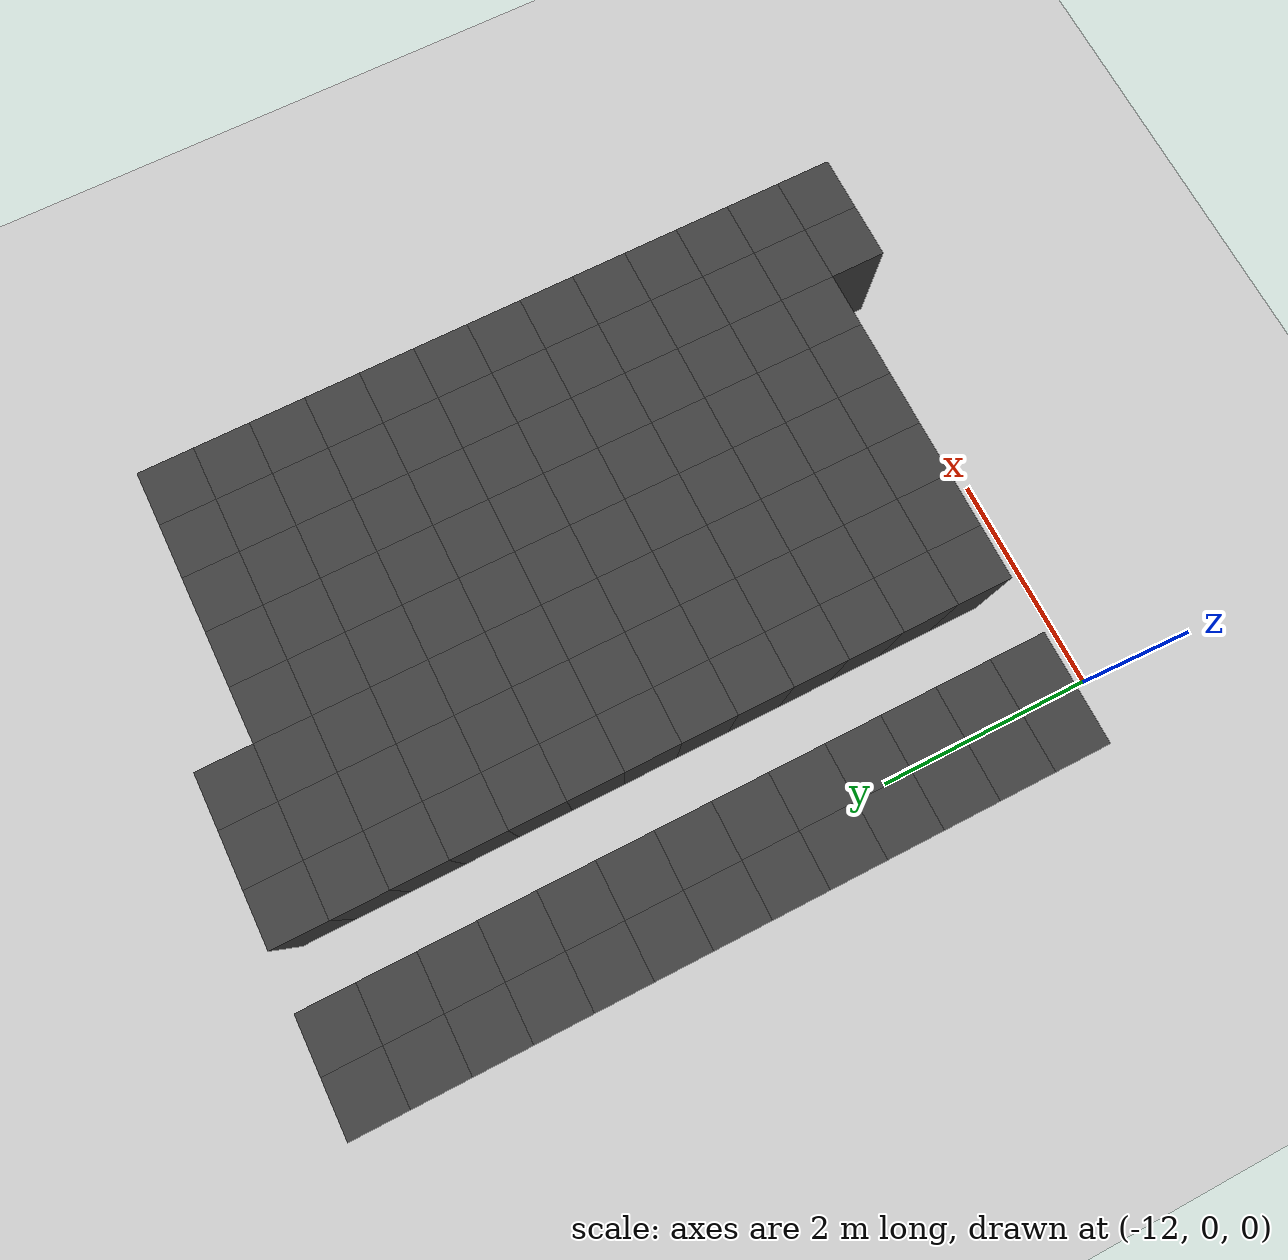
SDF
<sdf version="1.7">
 <world name="map_10777">
  <model name="ground_plane">
   <static>true</static>
   <link name="link">
    <collision name="collision">
     <geometry><plane><normal>0 0 1</normal><size>200 200</size></plane></geometry>
    </collision>
    <visual name="visual">
     <geometry><plane><normal>0 0 1</normal><size>200 200</size></plane></geometry>
     <material><ambient>0.8 0.8 0.8 1</ambient><diffuse>0.8 0.8 0.8 1</diffuse></material>
    </visual>
   </link>
  </model>
  <model name="maze_environment">
   <static>true</static>
   <link name="wall_528">
    <pose>-12.250 6.750 0.500 0 0 0</pose>
    <collision name="col"><geometry><box><size>0.5 0.5 1.0</size></box></geometry></collision>
    <visual name="vis">
     <geometry><box><size>0.5 0.5 1.0</size></box></geometry>
     <material><ambient>0.15 0.15 0.15 1</ambient><diffuse>0.25 0.25 0.25 1</diffuse></material>
    </visual>
   </link>
   <link name="wall_529">
    <pose>-11.750 6.750 0.500 0 0 0</pose>
    <collision name="col"><geometry><box><size>0.5 0.5 1.0</size></box></geometry></collision>
    <visual name="vis">
     <geometry><box><size>0.5 0.5 1.0</size></box></geometry>
     <material><ambient>0.15 0.15 0.15 1</ambient><diffuse>0.25 0.25 0.25 1</diffuse></material>
    </visual>
   </link>
   <link name="wall_530">
    <pose>-10.750 6.750 0.500 0 0 0</pose>
    <collision name="col"><geometry><box><size>0.5 0.5 1.0</size></box></geometry></collision>
    <visual name="vis">
     <geometry><box><size>0.5 0.5 1.0</size></box></geometry>
     <material><ambient>0.15 0.15 0.15 1</ambient><diffuse>0.25 0.25 0.25 1</diffuse></material>
    </visual>
   </link>
   <link name="wall_531">
    <pose>-10.250 6.750 0.500 0 0 0</pose>
    <collision name="col"><geometry><box><size>0.5 0.5 1.0</size></box></geometry></collision>
    <visual name="vis">
     <geometry><box><size>0.5 0.5 1.0</size></box></geometry>
     <material><ambient>0.15 0.15 0.15 1</ambient><diffuse>0.25 0.25 0.25 1</diffuse></material>
    </visual>
   </link>
   <link name="wall_532">
    <pose>-9.750 6.750 0.500 0 0 0</pose>
    <collision name="col"><geometry><box><size>0.5 0.5 1.0</size></box></geometry></collision>
    <visual name="vis">
     <geometry><box><size>0.5 0.5 1.0</size></box></geometry>
     <material><ambient>0.15 0.15 0.15 1</ambient><diffuse>0.25 0.25 0.25 1</diffuse></material>
    </visual>
   </link>
   <link name="wall_571">
    <pose>-12.250 6.250 0.500 0 0 0</pose>
    <collision name="col"><geometry><box><size>0.5 0.5 1.0</size></box></geometry></collision>
    <visual name="vis">
     <geometry><box><size>0.5 0.5 1.0</size></box></geometry>
     <material><ambient>0.15 0.15 0.15 1</ambient><diffuse>0.25 0.25 0.25 1</diffuse></material>
    </visual>
   </link>
   <link name="wall_572">
    <pose>-11.750 6.250 0.500 0 0 0</pose>
    <collision name="col"><geometry><box><size>0.5 0.5 1.0</size></box></geometry></collision>
    <visual name="vis">
     <geometry><box><size>0.5 0.5 1.0</size></box></geometry>
     <material><ambient>0.15 0.15 0.15 1</ambient><diffuse>0.25 0.25 0.25 1</diffuse></material>
    </visual>
   </link>
   <link name="wall_573">
    <pose>-10.750 6.250 0.500 0 0 0</pose>
    <collision name="col"><geometry><box><size>0.5 0.5 1.0</size></box></geometry></collision>
    <visual name="vis">
     <geometry><box><size>0.5 0.5 1.0</size></box></geometry>
     <material><ambient>0.15 0.15 0.15 1</ambient><diffuse>0.25 0.25 0.25 1</diffuse></material>
    </visual>
   </link>
   <link name="wall_574">
    <pose>-10.250 6.250 0.500 0 0 0</pose>
    <collision name="col"><geometry><box><size>0.5 0.5 1.0</size></box></geometry></collision>
    <visual name="vis">
     <geometry><box><size>0.5 0.5 1.0</size></box></geometry>
     <material><ambient>0.15 0.15 0.15 1</ambient><diffuse>0.25 0.25 0.25 1</diffuse></material>
    </visual>
   </link>
   <link name="wall_575">
    <pose>-9.750 6.250 0.500 0 0 0</pose>
    <collision name="col"><geometry><box><size>0.5 0.5 1.0</size></box></geometry></collision>
    <visual name="vis">
     <geometry><box><size>0.5 0.5 1.0</size></box></geometry>
     <material><ambient>0.15 0.15 0.15 1</ambient><diffuse>0.25 0.25 0.25 1</diffuse></material>
    </visual>
   </link>
   <link name="wall_576">
    <pose>-9.250 6.250 0.500 0 0 0</pose>
    <collision name="col"><geometry><box><size>0.5 0.5 1.0</size></box></geometry></collision>
    <visual name="vis">
     <geometry><box><size>0.5 0.5 1.0</size></box></geometry>
     <material><ambient>0.15 0.15 0.15 1</ambient><diffuse>0.25 0.25 0.25 1</diffuse></material>
    </visual>
   </link>
   <link name="wall_577">
    <pose>-8.750 6.250 0.500 0 0 0</pose>
    <collision name="col"><geometry><box><size>0.5 0.5 1.0</size></box></geometry></collision>
    <visual name="vis">
     <geometry><box><size>0.5 0.5 1.0</size></box></geometry>
     <material><ambient>0.15 0.15 0.15 1</ambient><diffuse>0.25 0.25 0.25 1</diffuse></material>
    </visual>
   </link>
   <link name="wall_578">
    <pose>-8.250 6.250 0.500 0 0 0</pose>
    <collision name="col"><geometry><box><size>0.5 0.5 1.0</size></box></geometry></collision>
    <visual name="vis">
     <geometry><box><size>0.5 0.5 1.0</size></box></geometry>
     <material><ambient>0.15 0.15 0.15 1</ambient><diffuse>0.25 0.25 0.25 1</diffuse></material>
    </visual>
   </link>
   <link name="wall_579">
    <pose>-7.750 6.250 0.500 0 0 0</pose>
    <collision name="col"><geometry><box><size>0.5 0.5 1.0</size></box></geometry></collision>
    <visual name="vis">
     <geometry><box><size>0.5 0.5 1.0</size></box></geometry>
     <material><ambient>0.15 0.15 0.15 1</ambient><diffuse>0.25 0.25 0.25 1</diffuse></material>
    </visual>
   </link>
   <link name="wall_580">
    <pose>-7.250 6.250 0.500 0 0 0</pose>
    <collision name="col"><geometry><box><size>0.5 0.5 1.0</size></box></geometry></collision>
    <visual name="vis">
     <geometry><box><size>0.5 0.5 1.0</size></box></geometry>
     <material><ambient>0.15 0.15 0.15 1</ambient><diffuse>0.25 0.25 0.25 1</diffuse></material>
    </visual>
   </link>
   <link name="wall_612">
    <pose>-12.250 5.750 0.500 0 0 0</pose>
    <collision name="col"><geometry><box><size>0.5 0.5 1.0</size></box></geometry></collision>
    <visual name="vis">
     <geometry><box><size>0.5 0.5 1.0</size></box></geometry>
     <material><ambient>0.15 0.15 0.15 1</ambient><diffuse>0.25 0.25 0.25 1</diffuse></material>
    </visual>
   </link>
   <link name="wall_613">
    <pose>-11.750 5.750 0.500 0 0 0</pose>
    <collision name="col"><geometry><box><size>0.5 0.5 1.0</size></box></geometry></collision>
    <visual name="vis">
     <geometry><box><size>0.5 0.5 1.0</size></box></geometry>
     <material><ambient>0.15 0.15 0.15 1</ambient><diffuse>0.25 0.25 0.25 1</diffuse></material>
    </visual>
   </link>
   <link name="wall_614">
    <pose>-10.750 5.750 0.500 0 0 0</pose>
    <collision name="col"><geometry><box><size>0.5 0.5 1.0</size></box></geometry></collision>
    <visual name="vis">
     <geometry><box><size>0.5 0.5 1.0</size></box></geometry>
     <material><ambient>0.15 0.15 0.15 1</ambient><diffuse>0.25 0.25 0.25 1</diffuse></material>
    </visual>
   </link>
   <link name="wall_615">
    <pose>-10.250 5.750 0.500 0 0 0</pose>
    <collision name="col"><geometry><box><size>0.5 0.5 1.0</size></box></geometry></collision>
    <visual name="vis">
     <geometry><box><size>0.5 0.5 1.0</size></box></geometry>
     <material><ambient>0.15 0.15 0.15 1</ambient><diffuse>0.25 0.25 0.25 1</diffuse></material>
    </visual>
   </link>
   <link name="wall_616">
    <pose>-9.750 5.750 0.500 0 0 0</pose>
    <collision name="col"><geometry><box><size>0.5 0.5 1.0</size></box></geometry></collision>
    <visual name="vis">
     <geometry><box><size>0.5 0.5 1.0</size></box></geometry>
     <material><ambient>0.15 0.15 0.15 1</ambient><diffuse>0.25 0.25 0.25 1</diffuse></material>
    </visual>
   </link>
   <link name="wall_617">
    <pose>-9.250 5.750 0.500 0 0 0</pose>
    <collision name="col"><geometry><box><size>0.5 0.5 1.0</size></box></geometry></collision>
    <visual name="vis">
     <geometry><box><size>0.5 0.5 1.0</size></box></geometry>
     <material><ambient>0.15 0.15 0.15 1</ambient><diffuse>0.25 0.25 0.25 1</diffuse></material>
    </visual>
   </link>
   <link name="wall_618">
    <pose>-8.750 5.750 0.500 0 0 0</pose>
    <collision name="col"><geometry><box><size>0.5 0.5 1.0</size></box></geometry></collision>
    <visual name="vis">
     <geometry><box><size>0.5 0.5 1.0</size></box></geometry>
     <material><ambient>0.15 0.15 0.15 1</ambient><diffuse>0.25 0.25 0.25 1</diffuse></material>
    </visual>
   </link>
   <link name="wall_619">
    <pose>-8.250 5.750 0.500 0 0 0</pose>
    <collision name="col"><geometry><box><size>0.5 0.5 1.0</size></box></geometry></collision>
    <visual name="vis">
     <geometry><box><size>0.5 0.5 1.0</size></box></geometry>
     <material><ambient>0.15 0.15 0.15 1</ambient><diffuse>0.25 0.25 0.25 1</diffuse></material>
    </visual>
   </link>
   <link name="wall_620">
    <pose>-7.750 5.750 0.500 0 0 0</pose>
    <collision name="col"><geometry><box><size>0.5 0.5 1.0</size></box></geometry></collision>
    <visual name="vis">
     <geometry><box><size>0.5 0.5 1.0</size></box></geometry>
     <material><ambient>0.15 0.15 0.15 1</ambient><diffuse>0.25 0.25 0.25 1</diffuse></material>
    </visual>
   </link>
   <link name="wall_621">
    <pose>-7.250 5.750 0.500 0 0 0</pose>
    <collision name="col"><geometry><box><size>0.5 0.5 1.0</size></box></geometry></collision>
    <visual name="vis">
     <geometry><box><size>0.5 0.5 1.0</size></box></geometry>
     <material><ambient>0.15 0.15 0.15 1</ambient><diffuse>0.25 0.25 0.25 1</diffuse></material>
    </visual>
   </link>
   <link name="wall_654">
    <pose>-12.250 5.250 0.500 0 0 0</pose>
    <collision name="col"><geometry><box><size>0.5 0.5 1.0</size></box></geometry></collision>
    <visual name="vis">
     <geometry><box><size>0.5 0.5 1.0</size></box></geometry>
     <material><ambient>0.15 0.15 0.15 1</ambient><diffuse>0.25 0.25 0.25 1</diffuse></material>
    </visual>
   </link>
   <link name="wall_655">
    <pose>-11.750 5.250 0.500 0 0 0</pose>
    <collision name="col"><geometry><box><size>0.5 0.5 1.0</size></box></geometry></collision>
    <visual name="vis">
     <geometry><box><size>0.5 0.5 1.0</size></box></geometry>
     <material><ambient>0.15 0.15 0.15 1</ambient><diffuse>0.25 0.25 0.25 1</diffuse></material>
    </visual>
   </link>
   <link name="wall_656">
    <pose>-10.750 5.250 0.500 0 0 0</pose>
    <collision name="col"><geometry><box><size>0.5 0.5 1.0</size></box></geometry></collision>
    <visual name="vis">
     <geometry><box><size>0.5 0.5 1.0</size></box></geometry>
     <material><ambient>0.15 0.15 0.15 1</ambient><diffuse>0.25 0.25 0.25 1</diffuse></material>
    </visual>
   </link>
   <link name="wall_657">
    <pose>-10.250 5.250 0.500 0 0 0</pose>
    <collision name="col"><geometry><box><size>0.5 0.5 1.0</size></box></geometry></collision>
    <visual name="vis">
     <geometry><box><size>0.5 0.5 1.0</size></box></geometry>
     <material><ambient>0.15 0.15 0.15 1</ambient><diffuse>0.25 0.25 0.25 1</diffuse></material>
    </visual>
   </link>
   <link name="wall_658">
    <pose>-9.750 5.250 0.500 0 0 0</pose>
    <collision name="col"><geometry><box><size>0.5 0.5 1.0</size></box></geometry></collision>
    <visual name="vis">
     <geometry><box><size>0.5 0.5 1.0</size></box></geometry>
     <material><ambient>0.15 0.15 0.15 1</ambient><diffuse>0.25 0.25 0.25 1</diffuse></material>
    </visual>
   </link>
   <link name="wall_659">
    <pose>-9.250 5.250 0.500 0 0 0</pose>
    <collision name="col"><geometry><box><size>0.5 0.5 1.0</size></box></geometry></collision>
    <visual name="vis">
     <geometry><box><size>0.5 0.5 1.0</size></box></geometry>
     <material><ambient>0.15 0.15 0.15 1</ambient><diffuse>0.25 0.25 0.25 1</diffuse></material>
    </visual>
   </link>
   <link name="wall_660">
    <pose>-8.750 5.250 0.500 0 0 0</pose>
    <collision name="col"><geometry><box><size>0.5 0.5 1.0</size></box></geometry></collision>
    <visual name="vis">
     <geometry><box><size>0.5 0.5 1.0</size></box></geometry>
     <material><ambient>0.15 0.15 0.15 1</ambient><diffuse>0.25 0.25 0.25 1</diffuse></material>
    </visual>
   </link>
   <link name="wall_661">
    <pose>-8.250 5.250 0.500 0 0 0</pose>
    <collision name="col"><geometry><box><size>0.5 0.5 1.0</size></box></geometry></collision>
    <visual name="vis">
     <geometry><box><size>0.5 0.5 1.0</size></box></geometry>
     <material><ambient>0.15 0.15 0.15 1</ambient><diffuse>0.25 0.25 0.25 1</diffuse></material>
    </visual>
   </link>
   <link name="wall_662">
    <pose>-7.750 5.250 0.500 0 0 0</pose>
    <collision name="col"><geometry><box><size>0.5 0.5 1.0</size></box></geometry></collision>
    <visual name="vis">
     <geometry><box><size>0.5 0.5 1.0</size></box></geometry>
     <material><ambient>0.15 0.15 0.15 1</ambient><diffuse>0.25 0.25 0.25 1</diffuse></material>
    </visual>
   </link>
   <link name="wall_663">
    <pose>-7.250 5.250 0.500 0 0 0</pose>
    <collision name="col"><geometry><box><size>0.5 0.5 1.0</size></box></geometry></collision>
    <visual name="vis">
     <geometry><box><size>0.5 0.5 1.0</size></box></geometry>
     <material><ambient>0.15 0.15 0.15 1</ambient><diffuse>0.25 0.25 0.25 1</diffuse></material>
    </visual>
   </link>
   <link name="wall_696">
    <pose>-12.250 4.750 0.500 0 0 0</pose>
    <collision name="col"><geometry><box><size>0.5 0.5 1.0</size></box></geometry></collision>
    <visual name="vis">
     <geometry><box><size>0.5 0.5 1.0</size></box></geometry>
     <material><ambient>0.15 0.15 0.15 1</ambient><diffuse>0.25 0.25 0.25 1</diffuse></material>
    </visual>
   </link>
   <link name="wall_697">
    <pose>-11.750 4.750 0.500 0 0 0</pose>
    <collision name="col"><geometry><box><size>0.5 0.5 1.0</size></box></geometry></collision>
    <visual name="vis">
     <geometry><box><size>0.5 0.5 1.0</size></box></geometry>
     <material><ambient>0.15 0.15 0.15 1</ambient><diffuse>0.25 0.25 0.25 1</diffuse></material>
    </visual>
   </link>
   <link name="wall_698">
    <pose>-10.750 4.750 0.500 0 0 0</pose>
    <collision name="col"><geometry><box><size>0.5 0.5 1.0</size></box></geometry></collision>
    <visual name="vis">
     <geometry><box><size>0.5 0.5 1.0</size></box></geometry>
     <material><ambient>0.15 0.15 0.15 1</ambient><diffuse>0.25 0.25 0.25 1</diffuse></material>
    </visual>
   </link>
   <link name="wall_699">
    <pose>-10.250 4.750 0.500 0 0 0</pose>
    <collision name="col"><geometry><box><size>0.5 0.5 1.0</size></box></geometry></collision>
    <visual name="vis">
     <geometry><box><size>0.5 0.5 1.0</size></box></geometry>
     <material><ambient>0.15 0.15 0.15 1</ambient><diffuse>0.25 0.25 0.25 1</diffuse></material>
    </visual>
   </link>
   <link name="wall_700">
    <pose>-9.750 4.750 0.500 0 0 0</pose>
    <collision name="col"><geometry><box><size>0.5 0.5 1.0</size></box></geometry></collision>
    <visual name="vis">
     <geometry><box><size>0.5 0.5 1.0</size></box></geometry>
     <material><ambient>0.15 0.15 0.15 1</ambient><diffuse>0.25 0.25 0.25 1</diffuse></material>
    </visual>
   </link>
   <link name="wall_701">
    <pose>-9.250 4.750 0.500 0 0 0</pose>
    <collision name="col"><geometry><box><size>0.5 0.5 1.0</size></box></geometry></collision>
    <visual name="vis">
     <geometry><box><size>0.5 0.5 1.0</size></box></geometry>
     <material><ambient>0.15 0.15 0.15 1</ambient><diffuse>0.25 0.25 0.25 1</diffuse></material>
    </visual>
   </link>
   <link name="wall_702">
    <pose>-8.750 4.750 0.500 0 0 0</pose>
    <collision name="col"><geometry><box><size>0.5 0.5 1.0</size></box></geometry></collision>
    <visual name="vis">
     <geometry><box><size>0.5 0.5 1.0</size></box></geometry>
     <material><ambient>0.15 0.15 0.15 1</ambient><diffuse>0.25 0.25 0.25 1</diffuse></material>
    </visual>
   </link>
   <link name="wall_703">
    <pose>-8.250 4.750 0.500 0 0 0</pose>
    <collision name="col"><geometry><box><size>0.5 0.5 1.0</size></box></geometry></collision>
    <visual name="vis">
     <geometry><box><size>0.5 0.5 1.0</size></box></geometry>
     <material><ambient>0.15 0.15 0.15 1</ambient><diffuse>0.25 0.25 0.25 1</diffuse></material>
    </visual>
   </link>
   <link name="wall_704">
    <pose>-7.750 4.750 0.500 0 0 0</pose>
    <collision name="col"><geometry><box><size>0.5 0.5 1.0</size></box></geometry></collision>
    <visual name="vis">
     <geometry><box><size>0.5 0.5 1.0</size></box></geometry>
     <material><ambient>0.15 0.15 0.15 1</ambient><diffuse>0.25 0.25 0.25 1</diffuse></material>
    </visual>
   </link>
   <link name="wall_705">
    <pose>-7.250 4.750 0.500 0 0 0</pose>
    <collision name="col"><geometry><box><size>0.5 0.5 1.0</size></box></geometry></collision>
    <visual name="vis">
     <geometry><box><size>0.5 0.5 1.0</size></box></geometry>
     <material><ambient>0.15 0.15 0.15 1</ambient><diffuse>0.25 0.25 0.25 1</diffuse></material>
    </visual>
   </link>
   <link name="wall_744">
    <pose>-12.250 4.250 0.500 0 0 0</pose>
    <collision name="col"><geometry><box><size>0.5 0.5 1.0</size></box></geometry></collision>
    <visual name="vis">
     <geometry><box><size>0.5 0.5 1.0</size></box></geometry>
     <material><ambient>0.15 0.15 0.15 1</ambient><diffuse>0.25 0.25 0.25 1</diffuse></material>
    </visual>
   </link>
   <link name="wall_745">
    <pose>-11.750 4.250 0.500 0 0 0</pose>
    <collision name="col"><geometry><box><size>0.5 0.5 1.0</size></box></geometry></collision>
    <visual name="vis">
     <geometry><box><size>0.5 0.5 1.0</size></box></geometry>
     <material><ambient>0.15 0.15 0.15 1</ambient><diffuse>0.25 0.25 0.25 1</diffuse></material>
    </visual>
   </link>
   <link name="wall_746">
    <pose>-10.750 4.250 0.500 0 0 0</pose>
    <collision name="col"><geometry><box><size>0.5 0.5 1.0</size></box></geometry></collision>
    <visual name="vis">
     <geometry><box><size>0.5 0.5 1.0</size></box></geometry>
     <material><ambient>0.15 0.15 0.15 1</ambient><diffuse>0.25 0.25 0.25 1</diffuse></material>
    </visual>
   </link>
   <link name="wall_747">
    <pose>-10.250 4.250 0.500 0 0 0</pose>
    <collision name="col"><geometry><box><size>0.5 0.5 1.0</size></box></geometry></collision>
    <visual name="vis">
     <geometry><box><size>0.5 0.5 1.0</size></box></geometry>
     <material><ambient>0.15 0.15 0.15 1</ambient><diffuse>0.25 0.25 0.25 1</diffuse></material>
    </visual>
   </link>
   <link name="wall_748">
    <pose>-9.750 4.250 0.500 0 0 0</pose>
    <collision name="col"><geometry><box><size>0.5 0.5 1.0</size></box></geometry></collision>
    <visual name="vis">
     <geometry><box><size>0.5 0.5 1.0</size></box></geometry>
     <material><ambient>0.15 0.15 0.15 1</ambient><diffuse>0.25 0.25 0.25 1</diffuse></material>
    </visual>
   </link>
   <link name="wall_749">
    <pose>-9.250 4.250 0.500 0 0 0</pose>
    <collision name="col"><geometry><box><size>0.5 0.5 1.0</size></box></geometry></collision>
    <visual name="vis">
     <geometry><box><size>0.5 0.5 1.0</size></box></geometry>
     <material><ambient>0.15 0.15 0.15 1</ambient><diffuse>0.25 0.25 0.25 1</diffuse></material>
    </visual>
   </link>
   <link name="wall_750">
    <pose>-8.750 4.250 0.500 0 0 0</pose>
    <collision name="col"><geometry><box><size>0.5 0.5 1.0</size></box></geometry></collision>
    <visual name="vis">
     <geometry><box><size>0.5 0.5 1.0</size></box></geometry>
     <material><ambient>0.15 0.15 0.15 1</ambient><diffuse>0.25 0.25 0.25 1</diffuse></material>
    </visual>
   </link>
   <link name="wall_751">
    <pose>-8.250 4.250 0.500 0 0 0</pose>
    <collision name="col"><geometry><box><size>0.5 0.5 1.0</size></box></geometry></collision>
    <visual name="vis">
     <geometry><box><size>0.5 0.5 1.0</size></box></geometry>
     <material><ambient>0.15 0.15 0.15 1</ambient><diffuse>0.25 0.25 0.25 1</diffuse></material>
    </visual>
   </link>
   <link name="wall_752">
    <pose>-7.750 4.250 0.500 0 0 0</pose>
    <collision name="col"><geometry><box><size>0.5 0.5 1.0</size></box></geometry></collision>
    <visual name="vis">
     <geometry><box><size>0.5 0.5 1.0</size></box></geometry>
     <material><ambient>0.15 0.15 0.15 1</ambient><diffuse>0.25 0.25 0.25 1</diffuse></material>
    </visual>
   </link>
   <link name="wall_753">
    <pose>-7.250 4.250 0.500 0 0 0</pose>
    <collision name="col"><geometry><box><size>0.5 0.5 1.0</size></box></geometry></collision>
    <visual name="vis">
     <geometry><box><size>0.5 0.5 1.0</size></box></geometry>
     <material><ambient>0.15 0.15 0.15 1</ambient><diffuse>0.25 0.25 0.25 1</diffuse></material>
    </visual>
   </link>
   <link name="wall_792">
    <pose>-12.250 3.750 0.500 0 0 0</pose>
    <collision name="col"><geometry><box><size>0.5 0.5 1.0</size></box></geometry></collision>
    <visual name="vis">
     <geometry><box><size>0.5 0.5 1.0</size></box></geometry>
     <material><ambient>0.15 0.15 0.15 1</ambient><diffuse>0.25 0.25 0.25 1</diffuse></material>
    </visual>
   </link>
   <link name="wall_793">
    <pose>-11.750 3.750 0.500 0 0 0</pose>
    <collision name="col"><geometry><box><size>0.5 0.5 1.0</size></box></geometry></collision>
    <visual name="vis">
     <geometry><box><size>0.5 0.5 1.0</size></box></geometry>
     <material><ambient>0.15 0.15 0.15 1</ambient><diffuse>0.25 0.25 0.25 1</diffuse></material>
    </visual>
   </link>
   <link name="wall_794">
    <pose>-10.750 3.750 0.500 0 0 0</pose>
    <collision name="col"><geometry><box><size>0.5 0.5 1.0</size></box></geometry></collision>
    <visual name="vis">
     <geometry><box><size>0.5 0.5 1.0</size></box></geometry>
     <material><ambient>0.15 0.15 0.15 1</ambient><diffuse>0.25 0.25 0.25 1</diffuse></material>
    </visual>
   </link>
   <link name="wall_795">
    <pose>-10.250 3.750 0.500 0 0 0</pose>
    <collision name="col"><geometry><box><size>0.5 0.5 1.0</size></box></geometry></collision>
    <visual name="vis">
     <geometry><box><size>0.5 0.5 1.0</size></box></geometry>
     <material><ambient>0.15 0.15 0.15 1</ambient><diffuse>0.25 0.25 0.25 1</diffuse></material>
    </visual>
   </link>
   <link name="wall_796">
    <pose>-9.750 3.750 0.500 0 0 0</pose>
    <collision name="col"><geometry><box><size>0.5 0.5 1.0</size></box></geometry></collision>
    <visual name="vis">
     <geometry><box><size>0.5 0.5 1.0</size></box></geometry>
     <material><ambient>0.15 0.15 0.15 1</ambient><diffuse>0.25 0.25 0.25 1</diffuse></material>
    </visual>
   </link>
   <link name="wall_797">
    <pose>-9.250 3.750 0.500 0 0 0</pose>
    <collision name="col"><geometry><box><size>0.5 0.5 1.0</size></box></geometry></collision>
    <visual name="vis">
     <geometry><box><size>0.5 0.5 1.0</size></box></geometry>
     <material><ambient>0.15 0.15 0.15 1</ambient><diffuse>0.25 0.25 0.25 1</diffuse></material>
    </visual>
   </link>
   <link name="wall_798">
    <pose>-8.750 3.750 0.500 0 0 0</pose>
    <collision name="col"><geometry><box><size>0.5 0.5 1.0</size></box></geometry></collision>
    <visual name="vis">
     <geometry><box><size>0.5 0.5 1.0</size></box></geometry>
     <material><ambient>0.15 0.15 0.15 1</ambient><diffuse>0.25 0.25 0.25 1</diffuse></material>
    </visual>
   </link>
   <link name="wall_799">
    <pose>-8.250 3.750 0.500 0 0 0</pose>
    <collision name="col"><geometry><box><size>0.5 0.5 1.0</size></box></geometry></collision>
    <visual name="vis">
     <geometry><box><size>0.5 0.5 1.0</size></box></geometry>
     <material><ambient>0.15 0.15 0.15 1</ambient><diffuse>0.25 0.25 0.25 1</diffuse></material>
    </visual>
   </link>
   <link name="wall_800">
    <pose>-7.750 3.750 0.500 0 0 0</pose>
    <collision name="col"><geometry><box><size>0.5 0.5 1.0</size></box></geometry></collision>
    <visual name="vis">
     <geometry><box><size>0.5 0.5 1.0</size></box></geometry>
     <material><ambient>0.15 0.15 0.15 1</ambient><diffuse>0.25 0.25 0.25 1</diffuse></material>
    </visual>
   </link>
   <link name="wall_801">
    <pose>-7.250 3.750 0.500 0 0 0</pose>
    <collision name="col"><geometry><box><size>0.5 0.5 1.0</size></box></geometry></collision>
    <visual name="vis">
     <geometry><box><size>0.5 0.5 1.0</size></box></geometry>
     <material><ambient>0.15 0.15 0.15 1</ambient><diffuse>0.25 0.25 0.25 1</diffuse></material>
    </visual>
   </link>
   <link name="wall_840">
    <pose>-12.250 3.250 0.500 0 0 0</pose>
    <collision name="col"><geometry><box><size>0.5 0.5 1.0</size></box></geometry></collision>
    <visual name="vis">
     <geometry><box><size>0.5 0.5 1.0</size></box></geometry>
     <material><ambient>0.15 0.15 0.15 1</ambient><diffuse>0.25 0.25 0.25 1</diffuse></material>
    </visual>
   </link>
   <link name="wall_841">
    <pose>-11.750 3.250 0.500 0 0 0</pose>
    <collision name="col"><geometry><box><size>0.5 0.5 1.0</size></box></geometry></collision>
    <visual name="vis">
     <geometry><box><size>0.5 0.5 1.0</size></box></geometry>
     <material><ambient>0.15 0.15 0.15 1</ambient><diffuse>0.25 0.25 0.25 1</diffuse></material>
    </visual>
   </link>
   <link name="wall_842">
    <pose>-10.750 3.250 0.500 0 0 0</pose>
    <collision name="col"><geometry><box><size>0.5 0.5 1.0</size></box></geometry></collision>
    <visual name="vis">
     <geometry><box><size>0.5 0.5 1.0</size></box></geometry>
     <material><ambient>0.15 0.15 0.15 1</ambient><diffuse>0.25 0.25 0.25 1</diffuse></material>
    </visual>
   </link>
   <link name="wall_843">
    <pose>-10.250 3.250 0.500 0 0 0</pose>
    <collision name="col"><geometry><box><size>0.5 0.5 1.0</size></box></geometry></collision>
    <visual name="vis">
     <geometry><box><size>0.5 0.5 1.0</size></box></geometry>
     <material><ambient>0.15 0.15 0.15 1</ambient><diffuse>0.25 0.25 0.25 1</diffuse></material>
    </visual>
   </link>
   <link name="wall_844">
    <pose>-9.750 3.250 0.500 0 0 0</pose>
    <collision name="col"><geometry><box><size>0.5 0.5 1.0</size></box></geometry></collision>
    <visual name="vis">
     <geometry><box><size>0.5 0.5 1.0</size></box></geometry>
     <material><ambient>0.15 0.15 0.15 1</ambient><diffuse>0.25 0.25 0.25 1</diffuse></material>
    </visual>
   </link>
   <link name="wall_845">
    <pose>-9.250 3.250 0.500 0 0 0</pose>
    <collision name="col"><geometry><box><size>0.5 0.5 1.0</size></box></geometry></collision>
    <visual name="vis">
     <geometry><box><size>0.5 0.5 1.0</size></box></geometry>
     <material><ambient>0.15 0.15 0.15 1</ambient><diffuse>0.25 0.25 0.25 1</diffuse></material>
    </visual>
   </link>
   <link name="wall_846">
    <pose>-8.750 3.250 0.500 0 0 0</pose>
    <collision name="col"><geometry><box><size>0.5 0.5 1.0</size></box></geometry></collision>
    <visual name="vis">
     <geometry><box><size>0.5 0.5 1.0</size></box></geometry>
     <material><ambient>0.15 0.15 0.15 1</ambient><diffuse>0.25 0.25 0.25 1</diffuse></material>
    </visual>
   </link>
   <link name="wall_847">
    <pose>-8.250 3.250 0.500 0 0 0</pose>
    <collision name="col"><geometry><box><size>0.5 0.5 1.0</size></box></geometry></collision>
    <visual name="vis">
     <geometry><box><size>0.5 0.5 1.0</size></box></geometry>
     <material><ambient>0.15 0.15 0.15 1</ambient><diffuse>0.25 0.25 0.25 1</diffuse></material>
    </visual>
   </link>
   <link name="wall_848">
    <pose>-7.750 3.250 0.500 0 0 0</pose>
    <collision name="col"><geometry><box><size>0.5 0.5 1.0</size></box></geometry></collision>
    <visual name="vis">
     <geometry><box><size>0.5 0.5 1.0</size></box></geometry>
     <material><ambient>0.15 0.15 0.15 1</ambient><diffuse>0.25 0.25 0.25 1</diffuse></material>
    </visual>
   </link>
   <link name="wall_849">
    <pose>-7.250 3.250 0.500 0 0 0</pose>
    <collision name="col"><geometry><box><size>0.5 0.5 1.0</size></box></geometry></collision>
    <visual name="vis">
     <geometry><box><size>0.5 0.5 1.0</size></box></geometry>
     <material><ambient>0.15 0.15 0.15 1</ambient><diffuse>0.25 0.25 0.25 1</diffuse></material>
    </visual>
   </link>
   <link name="wall_888">
    <pose>-12.250 2.750 0.500 0 0 0</pose>
    <collision name="col"><geometry><box><size>0.5 0.5 1.0</size></box></geometry></collision>
    <visual name="vis">
     <geometry><box><size>0.5 0.5 1.0</size></box></geometry>
     <material><ambient>0.15 0.15 0.15 1</ambient><diffuse>0.25 0.25 0.25 1</diffuse></material>
    </visual>
   </link>
   <link name="wall_889">
    <pose>-11.750 2.750 0.500 0 0 0</pose>
    <collision name="col"><geometry><box><size>0.5 0.5 1.0</size></box></geometry></collision>
    <visual name="vis">
     <geometry><box><size>0.5 0.5 1.0</size></box></geometry>
     <material><ambient>0.15 0.15 0.15 1</ambient><diffuse>0.25 0.25 0.25 1</diffuse></material>
    </visual>
   </link>
   <link name="wall_890">
    <pose>-10.750 2.750 0.500 0 0 0</pose>
    <collision name="col"><geometry><box><size>0.5 0.5 1.0</size></box></geometry></collision>
    <visual name="vis">
     <geometry><box><size>0.5 0.5 1.0</size></box></geometry>
     <material><ambient>0.15 0.15 0.15 1</ambient><diffuse>0.25 0.25 0.25 1</diffuse></material>
    </visual>
   </link>
   <link name="wall_891">
    <pose>-10.250 2.750 0.500 0 0 0</pose>
    <collision name="col"><geometry><box><size>0.5 0.5 1.0</size></box></geometry></collision>
    <visual name="vis">
     <geometry><box><size>0.5 0.5 1.0</size></box></geometry>
     <material><ambient>0.15 0.15 0.15 1</ambient><diffuse>0.25 0.25 0.25 1</diffuse></material>
    </visual>
   </link>
   <link name="wall_892">
    <pose>-9.750 2.750 0.500 0 0 0</pose>
    <collision name="col"><geometry><box><size>0.5 0.5 1.0</size></box></geometry></collision>
    <visual name="vis">
     <geometry><box><size>0.5 0.5 1.0</size></box></geometry>
     <material><ambient>0.15 0.15 0.15 1</ambient><diffuse>0.25 0.25 0.25 1</diffuse></material>
    </visual>
   </link>
   <link name="wall_893">
    <pose>-9.250 2.750 0.500 0 0 0</pose>
    <collision name="col"><geometry><box><size>0.5 0.5 1.0</size></box></geometry></collision>
    <visual name="vis">
     <geometry><box><size>0.5 0.5 1.0</size></box></geometry>
     <material><ambient>0.15 0.15 0.15 1</ambient><diffuse>0.25 0.25 0.25 1</diffuse></material>
    </visual>
   </link>
   <link name="wall_894">
    <pose>-8.750 2.750 0.500 0 0 0</pose>
    <collision name="col"><geometry><box><size>0.5 0.5 1.0</size></box></geometry></collision>
    <visual name="vis">
     <geometry><box><size>0.5 0.5 1.0</size></box></geometry>
     <material><ambient>0.15 0.15 0.15 1</ambient><diffuse>0.25 0.25 0.25 1</diffuse></material>
    </visual>
   </link>
   <link name="wall_895">
    <pose>-8.250 2.750 0.500 0 0 0</pose>
    <collision name="col"><geometry><box><size>0.5 0.5 1.0</size></box></geometry></collision>
    <visual name="vis">
     <geometry><box><size>0.5 0.5 1.0</size></box></geometry>
     <material><ambient>0.15 0.15 0.15 1</ambient><diffuse>0.25 0.25 0.25 1</diffuse></material>
    </visual>
   </link>
   <link name="wall_896">
    <pose>-7.750 2.750 0.500 0 0 0</pose>
    <collision name="col"><geometry><box><size>0.5 0.5 1.0</size></box></geometry></collision>
    <visual name="vis">
     <geometry><box><size>0.5 0.5 1.0</size></box></geometry>
     <material><ambient>0.15 0.15 0.15 1</ambient><diffuse>0.25 0.25 0.25 1</diffuse></material>
    </visual>
   </link>
   <link name="wall_897">
    <pose>-7.250 2.750 0.500 0 0 0</pose>
    <collision name="col"><geometry><box><size>0.5 0.5 1.0</size></box></geometry></collision>
    <visual name="vis">
     <geometry><box><size>0.5 0.5 1.0</size></box></geometry>
     <material><ambient>0.15 0.15 0.15 1</ambient><diffuse>0.25 0.25 0.25 1</diffuse></material>
    </visual>
   </link>
   <link name="wall_936">
    <pose>-12.250 2.250 0.500 0 0 0</pose>
    <collision name="col"><geometry><box><size>0.5 0.5 1.0</size></box></geometry></collision>
    <visual name="vis">
     <geometry><box><size>0.5 0.5 1.0</size></box></geometry>
     <material><ambient>0.15 0.15 0.15 1</ambient><diffuse>0.25 0.25 0.25 1</diffuse></material>
    </visual>
   </link>
   <link name="wall_937">
    <pose>-11.750 2.250 0.500 0 0 0</pose>
    <collision name="col"><geometry><box><size>0.5 0.5 1.0</size></box></geometry></collision>
    <visual name="vis">
     <geometry><box><size>0.5 0.5 1.0</size></box></geometry>
     <material><ambient>0.15 0.15 0.15 1</ambient><diffuse>0.25 0.25 0.25 1</diffuse></material>
    </visual>
   </link>
   <link name="wall_938">
    <pose>-10.750 2.250 0.500 0 0 0</pose>
    <collision name="col"><geometry><box><size>0.5 0.5 1.0</size></box></geometry></collision>
    <visual name="vis">
     <geometry><box><size>0.5 0.5 1.0</size></box></geometry>
     <material><ambient>0.15 0.15 0.15 1</ambient><diffuse>0.25 0.25 0.25 1</diffuse></material>
    </visual>
   </link>
   <link name="wall_939">
    <pose>-10.250 2.250 0.500 0 0 0</pose>
    <collision name="col"><geometry><box><size>0.5 0.5 1.0</size></box></geometry></collision>
    <visual name="vis">
     <geometry><box><size>0.5 0.5 1.0</size></box></geometry>
     <material><ambient>0.15 0.15 0.15 1</ambient><diffuse>0.25 0.25 0.25 1</diffuse></material>
    </visual>
   </link>
   <link name="wall_940">
    <pose>-9.750 2.250 0.500 0 0 0</pose>
    <collision name="col"><geometry><box><size>0.5 0.5 1.0</size></box></geometry></collision>
    <visual name="vis">
     <geometry><box><size>0.5 0.5 1.0</size></box></geometry>
     <material><ambient>0.15 0.15 0.15 1</ambient><diffuse>0.25 0.25 0.25 1</diffuse></material>
    </visual>
   </link>
   <link name="wall_941">
    <pose>-9.250 2.250 0.500 0 0 0</pose>
    <collision name="col"><geometry><box><size>0.5 0.5 1.0</size></box></geometry></collision>
    <visual name="vis">
     <geometry><box><size>0.5 0.5 1.0</size></box></geometry>
     <material><ambient>0.15 0.15 0.15 1</ambient><diffuse>0.25 0.25 0.25 1</diffuse></material>
    </visual>
   </link>
   <link name="wall_942">
    <pose>-8.750 2.250 0.500 0 0 0</pose>
    <collision name="col"><geometry><box><size>0.5 0.5 1.0</size></box></geometry></collision>
    <visual name="vis">
     <geometry><box><size>0.5 0.5 1.0</size></box></geometry>
     <material><ambient>0.15 0.15 0.15 1</ambient><diffuse>0.25 0.25 0.25 1</diffuse></material>
    </visual>
   </link>
   <link name="wall_943">
    <pose>-8.250 2.250 0.500 0 0 0</pose>
    <collision name="col"><geometry><box><size>0.5 0.5 1.0</size></box></geometry></collision>
    <visual name="vis">
     <geometry><box><size>0.5 0.5 1.0</size></box></geometry>
     <material><ambient>0.15 0.15 0.15 1</ambient><diffuse>0.25 0.25 0.25 1</diffuse></material>
    </visual>
   </link>
   <link name="wall_944">
    <pose>-7.750 2.250 0.500 0 0 0</pose>
    <collision name="col"><geometry><box><size>0.5 0.5 1.0</size></box></geometry></collision>
    <visual name="vis">
     <geometry><box><size>0.5 0.5 1.0</size></box></geometry>
     <material><ambient>0.15 0.15 0.15 1</ambient><diffuse>0.25 0.25 0.25 1</diffuse></material>
    </visual>
   </link>
   <link name="wall_945">
    <pose>-7.250 2.250 0.500 0 0 0</pose>
    <collision name="col"><geometry><box><size>0.5 0.5 1.0</size></box></geometry></collision>
    <visual name="vis">
     <geometry><box><size>0.5 0.5 1.0</size></box></geometry>
     <material><ambient>0.15 0.15 0.15 1</ambient><diffuse>0.25 0.25 0.25 1</diffuse></material>
    </visual>
   </link>
   <link name="wall_984">
    <pose>-12.250 1.750 0.500 0 0 0</pose>
    <collision name="col"><geometry><box><size>0.5 0.5 1.0</size></box></geometry></collision>
    <visual name="vis">
     <geometry><box><size>0.5 0.5 1.0</size></box></geometry>
     <material><ambient>0.15 0.15 0.15 1</ambient><diffuse>0.25 0.25 0.25 1</diffuse></material>
    </visual>
   </link>
   <link name="wall_985">
    <pose>-11.750 1.750 0.500 0 0 0</pose>
    <collision name="col"><geometry><box><size>0.5 0.5 1.0</size></box></geometry></collision>
    <visual name="vis">
     <geometry><box><size>0.5 0.5 1.0</size></box></geometry>
     <material><ambient>0.15 0.15 0.15 1</ambient><diffuse>0.25 0.25 0.25 1</diffuse></material>
    </visual>
   </link>
   <link name="wall_986">
    <pose>-10.750 1.750 0.500 0 0 0</pose>
    <collision name="col"><geometry><box><size>0.5 0.5 1.0</size></box></geometry></collision>
    <visual name="vis">
     <geometry><box><size>0.5 0.5 1.0</size></box></geometry>
     <material><ambient>0.15 0.15 0.15 1</ambient><diffuse>0.25 0.25 0.25 1</diffuse></material>
    </visual>
   </link>
   <link name="wall_987">
    <pose>-10.250 1.750 0.500 0 0 0</pose>
    <collision name="col"><geometry><box><size>0.5 0.5 1.0</size></box></geometry></collision>
    <visual name="vis">
     <geometry><box><size>0.5 0.5 1.0</size></box></geometry>
     <material><ambient>0.15 0.15 0.15 1</ambient><diffuse>0.25 0.25 0.25 1</diffuse></material>
    </visual>
   </link>
   <link name="wall_988">
    <pose>-9.750 1.750 0.500 0 0 0</pose>
    <collision name="col"><geometry><box><size>0.5 0.5 1.0</size></box></geometry></collision>
    <visual name="vis">
     <geometry><box><size>0.5 0.5 1.0</size></box></geometry>
     <material><ambient>0.15 0.15 0.15 1</ambient><diffuse>0.25 0.25 0.25 1</diffuse></material>
    </visual>
   </link>
   <link name="wall_989">
    <pose>-9.250 1.750 0.500 0 0 0</pose>
    <collision name="col"><geometry><box><size>0.5 0.5 1.0</size></box></geometry></collision>
    <visual name="vis">
     <geometry><box><size>0.5 0.5 1.0</size></box></geometry>
     <material><ambient>0.15 0.15 0.15 1</ambient><diffuse>0.25 0.25 0.25 1</diffuse></material>
    </visual>
   </link>
   <link name="wall_990">
    <pose>-8.750 1.750 0.500 0 0 0</pose>
    <collision name="col"><geometry><box><size>0.5 0.5 1.0</size></box></geometry></collision>
    <visual name="vis">
     <geometry><box><size>0.5 0.5 1.0</size></box></geometry>
     <material><ambient>0.15 0.15 0.15 1</ambient><diffuse>0.25 0.25 0.25 1</diffuse></material>
    </visual>
   </link>
   <link name="wall_991">
    <pose>-8.250 1.750 0.500 0 0 0</pose>
    <collision name="col"><geometry><box><size>0.5 0.5 1.0</size></box></geometry></collision>
    <visual name="vis">
     <geometry><box><size>0.5 0.5 1.0</size></box></geometry>
     <material><ambient>0.15 0.15 0.15 1</ambient><diffuse>0.25 0.25 0.25 1</diffuse></material>
    </visual>
   </link>
   <link name="wall_992">
    <pose>-7.750 1.750 0.500 0 0 0</pose>
    <collision name="col"><geometry><box><size>0.5 0.5 1.0</size></box></geometry></collision>
    <visual name="vis">
     <geometry><box><size>0.5 0.5 1.0</size></box></geometry>
     <material><ambient>0.15 0.15 0.15 1</ambient><diffuse>0.25 0.25 0.25 1</diffuse></material>
    </visual>
   </link>
   <link name="wall_993">
    <pose>-7.250 1.750 0.500 0 0 0</pose>
    <collision name="col"><geometry><box><size>0.5 0.5 1.0</size></box></geometry></collision>
    <visual name="vis">
     <geometry><box><size>0.5 0.5 1.0</size></box></geometry>
     <material><ambient>0.15 0.15 0.15 1</ambient><diffuse>0.25 0.25 0.25 1</diffuse></material>
    </visual>
   </link>
   <link name="wall_1026">
    <pose>-12.250 1.250 0.500 0 0 0</pose>
    <collision name="col"><geometry><box><size>0.5 0.5 1.0</size></box></geometry></collision>
    <visual name="vis">
     <geometry><box><size>0.5 0.5 1.0</size></box></geometry>
     <material><ambient>0.15 0.15 0.15 1</ambient><diffuse>0.25 0.25 0.25 1</diffuse></material>
    </visual>
   </link>
   <link name="wall_1027">
    <pose>-11.750 1.250 0.500 0 0 0</pose>
    <collision name="col"><geometry><box><size>0.5 0.5 1.0</size></box></geometry></collision>
    <visual name="vis">
     <geometry><box><size>0.5 0.5 1.0</size></box></geometry>
     <material><ambient>0.15 0.15 0.15 1</ambient><diffuse>0.25 0.25 0.25 1</diffuse></material>
    </visual>
   </link>
   <link name="wall_1028">
    <pose>-10.750 1.250 0.500 0 0 0</pose>
    <collision name="col"><geometry><box><size>0.5 0.5 1.0</size></box></geometry></collision>
    <visual name="vis">
     <geometry><box><size>0.5 0.5 1.0</size></box></geometry>
     <material><ambient>0.15 0.15 0.15 1</ambient><diffuse>0.25 0.25 0.25 1</diffuse></material>
    </visual>
   </link>
   <link name="wall_1029">
    <pose>-10.250 1.250 0.500 0 0 0</pose>
    <collision name="col"><geometry><box><size>0.5 0.5 1.0</size></box></geometry></collision>
    <visual name="vis">
     <geometry><box><size>0.5 0.5 1.0</size></box></geometry>
     <material><ambient>0.15 0.15 0.15 1</ambient><diffuse>0.25 0.25 0.25 1</diffuse></material>
    </visual>
   </link>
   <link name="wall_1030">
    <pose>-9.750 1.250 0.500 0 0 0</pose>
    <collision name="col"><geometry><box><size>0.5 0.5 1.0</size></box></geometry></collision>
    <visual name="vis">
     <geometry><box><size>0.5 0.5 1.0</size></box></geometry>
     <material><ambient>0.15 0.15 0.15 1</ambient><diffuse>0.25 0.25 0.25 1</diffuse></material>
    </visual>
   </link>
   <link name="wall_1031">
    <pose>-9.250 1.250 0.500 0 0 0</pose>
    <collision name="col"><geometry><box><size>0.5 0.5 1.0</size></box></geometry></collision>
    <visual name="vis">
     <geometry><box><size>0.5 0.5 1.0</size></box></geometry>
     <material><ambient>0.15 0.15 0.15 1</ambient><diffuse>0.25 0.25 0.25 1</diffuse></material>
    </visual>
   </link>
   <link name="wall_1032">
    <pose>-8.750 1.250 0.500 0 0 0</pose>
    <collision name="col"><geometry><box><size>0.5 0.5 1.0</size></box></geometry></collision>
    <visual name="vis">
     <geometry><box><size>0.5 0.5 1.0</size></box></geometry>
     <material><ambient>0.15 0.15 0.15 1</ambient><diffuse>0.25 0.25 0.25 1</diffuse></material>
    </visual>
   </link>
   <link name="wall_1033">
    <pose>-8.250 1.250 0.500 0 0 0</pose>
    <collision name="col"><geometry><box><size>0.5 0.5 1.0</size></box></geometry></collision>
    <visual name="vis">
     <geometry><box><size>0.5 0.5 1.0</size></box></geometry>
     <material><ambient>0.15 0.15 0.15 1</ambient><diffuse>0.25 0.25 0.25 1</diffuse></material>
    </visual>
   </link>
   <link name="wall_1034">
    <pose>-7.750 1.250 0.500 0 0 0</pose>
    <collision name="col"><geometry><box><size>0.5 0.5 1.0</size></box></geometry></collision>
    <visual name="vis">
     <geometry><box><size>0.5 0.5 1.0</size></box></geometry>
     <material><ambient>0.15 0.15 0.15 1</ambient><diffuse>0.25 0.25 0.25 1</diffuse></material>
    </visual>
   </link>
   <link name="wall_1035">
    <pose>-7.250 1.250 0.500 0 0 0</pose>
    <collision name="col"><geometry><box><size>0.5 0.5 1.0</size></box></geometry></collision>
    <visual name="vis">
     <geometry><box><size>0.5 0.5 1.0</size></box></geometry>
     <material><ambient>0.15 0.15 0.15 1</ambient><diffuse>0.25 0.25 0.25 1</diffuse></material>
    </visual>
   </link>
   <link name="wall_1068">
    <pose>-12.250 0.750 0.500 0 0 0</pose>
    <collision name="col"><geometry><box><size>0.5 0.5 1.0</size></box></geometry></collision>
    <visual name="vis">
     <geometry><box><size>0.5 0.5 1.0</size></box></geometry>
     <material><ambient>0.15 0.15 0.15 1</ambient><diffuse>0.25 0.25 0.25 1</diffuse></material>
    </visual>
   </link>
   <link name="wall_1069">
    <pose>-11.750 0.750 0.500 0 0 0</pose>
    <collision name="col"><geometry><box><size>0.5 0.5 1.0</size></box></geometry></collision>
    <visual name="vis">
     <geometry><box><size>0.5 0.5 1.0</size></box></geometry>
     <material><ambient>0.15 0.15 0.15 1</ambient><diffuse>0.25 0.25 0.25 1</diffuse></material>
    </visual>
   </link>
   <link name="wall_1070">
    <pose>-10.750 0.750 0.500 0 0 0</pose>
    <collision name="col"><geometry><box><size>0.5 0.5 1.0</size></box></geometry></collision>
    <visual name="vis">
     <geometry><box><size>0.5 0.5 1.0</size></box></geometry>
     <material><ambient>0.15 0.15 0.15 1</ambient><diffuse>0.25 0.25 0.25 1</diffuse></material>
    </visual>
   </link>
   <link name="wall_1071">
    <pose>-10.250 0.750 0.500 0 0 0</pose>
    <collision name="col"><geometry><box><size>0.5 0.5 1.0</size></box></geometry></collision>
    <visual name="vis">
     <geometry><box><size>0.5 0.5 1.0</size></box></geometry>
     <material><ambient>0.15 0.15 0.15 1</ambient><diffuse>0.25 0.25 0.25 1</diffuse></material>
    </visual>
   </link>
   <link name="wall_1072">
    <pose>-9.750 0.750 0.500 0 0 0</pose>
    <collision name="col"><geometry><box><size>0.5 0.5 1.0</size></box></geometry></collision>
    <visual name="vis">
     <geometry><box><size>0.5 0.5 1.0</size></box></geometry>
     <material><ambient>0.15 0.15 0.15 1</ambient><diffuse>0.25 0.25 0.25 1</diffuse></material>
    </visual>
   </link>
   <link name="wall_1073">
    <pose>-9.250 0.750 0.500 0 0 0</pose>
    <collision name="col"><geometry><box><size>0.5 0.5 1.0</size></box></geometry></collision>
    <visual name="vis">
     <geometry><box><size>0.5 0.5 1.0</size></box></geometry>
     <material><ambient>0.15 0.15 0.15 1</ambient><diffuse>0.25 0.25 0.25 1</diffuse></material>
    </visual>
   </link>
   <link name="wall_1074">
    <pose>-8.750 0.750 0.500 0 0 0</pose>
    <collision name="col"><geometry><box><size>0.5 0.5 1.0</size></box></geometry></collision>
    <visual name="vis">
     <geometry><box><size>0.5 0.5 1.0</size></box></geometry>
     <material><ambient>0.15 0.15 0.15 1</ambient><diffuse>0.25 0.25 0.25 1</diffuse></material>
    </visual>
   </link>
   <link name="wall_1075">
    <pose>-8.250 0.750 0.500 0 0 0</pose>
    <collision name="col"><geometry><box><size>0.5 0.5 1.0</size></box></geometry></collision>
    <visual name="vis">
     <geometry><box><size>0.5 0.5 1.0</size></box></geometry>
     <material><ambient>0.15 0.15 0.15 1</ambient><diffuse>0.25 0.25 0.25 1</diffuse></material>
    </visual>
   </link>
   <link name="wall_1076">
    <pose>-7.750 0.750 0.500 0 0 0</pose>
    <collision name="col"><geometry><box><size>0.5 0.5 1.0</size></box></geometry></collision>
    <visual name="vis">
     <geometry><box><size>0.5 0.5 1.0</size></box></geometry>
     <material><ambient>0.15 0.15 0.15 1</ambient><diffuse>0.25 0.25 0.25 1</diffuse></material>
    </visual>
   </link>
   <link name="wall_1077">
    <pose>-7.250 0.750 0.500 0 0 0</pose>
    <collision name="col"><geometry><box><size>0.5 0.5 1.0</size></box></geometry></collision>
    <visual name="vis">
     <geometry><box><size>0.5 0.5 1.0</size></box></geometry>
     <material><ambient>0.15 0.15 0.15 1</ambient><diffuse>0.25 0.25 0.25 1</diffuse></material>
    </visual>
   </link>
   <link name="wall_1099">
    <pose>-7.750 0.250 0.500 0 0 0</pose>
    <collision name="col"><geometry><box><size>0.5 0.5 1.0</size></box></geometry></collision>
    <visual name="vis">
     <geometry><box><size>0.5 0.5 1.0</size></box></geometry>
     <material><ambient>0.15 0.15 0.15 1</ambient><diffuse>0.25 0.25 0.25 1</diffuse></material>
    </visual>
   </link>
   <link name="wall_1100">
    <pose>-7.250 0.250 0.500 0 0 0</pose>
    <collision name="col"><geometry><box><size>0.5 0.5 1.0</size></box></geometry></collision>
    <visual name="vis">
     <geometry><box><size>0.5 0.5 1.0</size></box></geometry>
     <material><ambient>0.15 0.15 0.15 1</ambient><diffuse>0.25 0.25 0.25 1</diffuse></material>
    </visual>
   </link>
  </model>
 </world>
</sdf>
